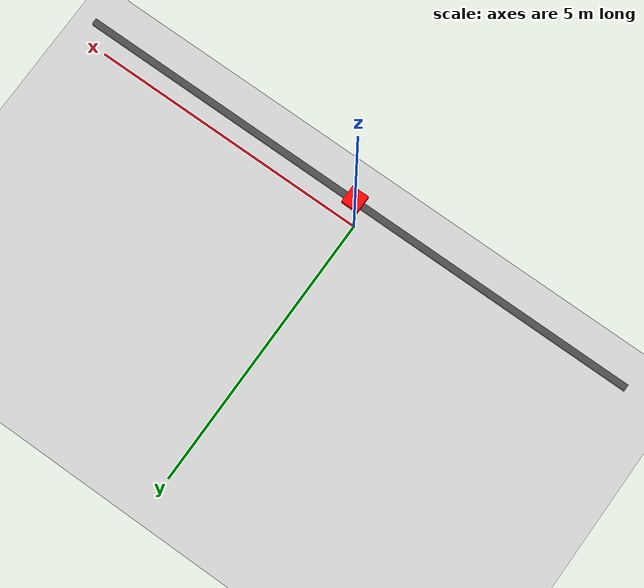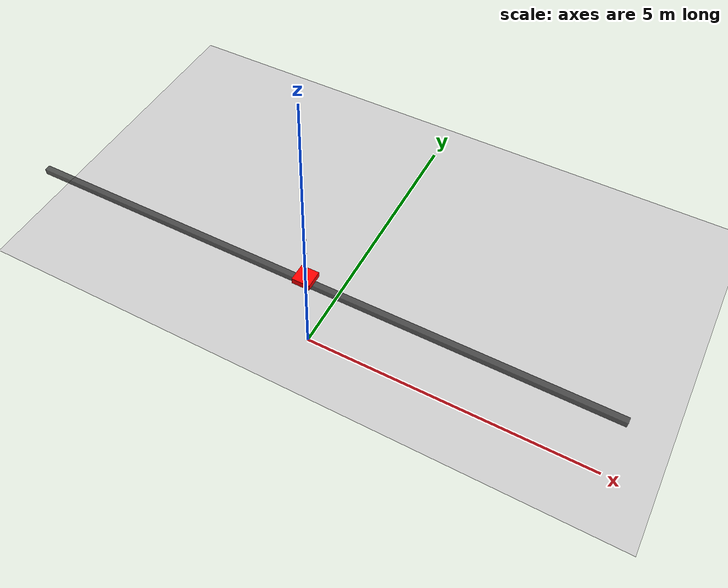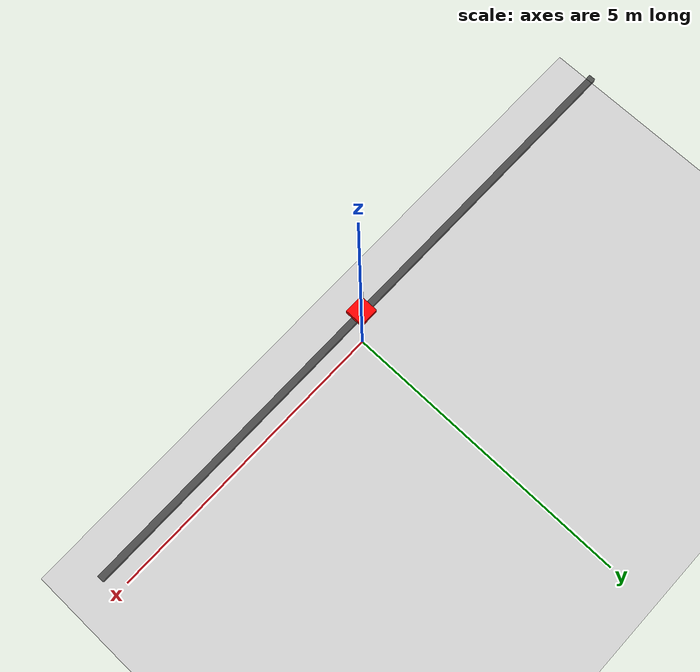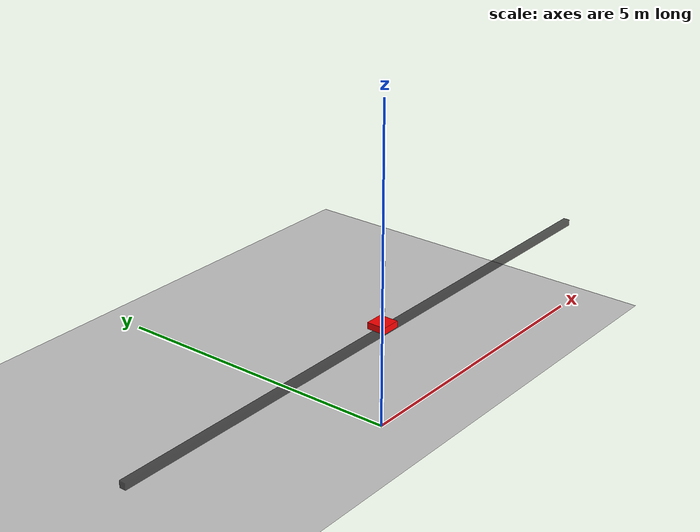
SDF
<?xml version="1.0" ?>
<sdf version="1.6">
  <world name="cartpole_world">
    <physics name="1ms" type="dart">
      <max_step_size>0.001</max_step_size>
      <real_time_factor>1.0</real_time_factor>
    </physics>
    <plugin
      filename="libignition-gazebo-physics-system.so"
      name="ignition::gazebo::systems::Physics">
    </plugin>
    <plugin
      filename="libignition-gazebo-user-commands-system.so"
      name="ignition::gazebo::systems::UserCommands">
    </plugin>
    <plugin
      filename="libignition-gazebo-scene-broadcaster-system.so"
      name="ignition::gazebo::systems::SceneBroadcaster">
    </plugin>

    <scene>
      <ambient>1.0 1.0 1.0</ambient>
      <background>0.8 0.8 0.8</background>
    </scene>

    <gui fullscreen="0">
      <!-- 3D scene -->
      <plugin filename="GzScene3D" name="3D View">
        <ignition-gui>
          <title>3D View</title>
          <property type="bool" key="showTitleBar">false</property>
          <property type="string" key="state">docked</property>
        </ignition-gui>

        <engine>ogre</engine>
        <scene>scene</scene>
        <ambient_light>0.4 0.4 0.4</ambient_light>
        <background_color>0.8 0.8 0.8</background_color>
        <camera_pose>0 -3 2.5 0 0.5 1.57</camera_pose>
      </plugin>

      <!-- World control -->
      <plugin filename="WorldControl" name="World control">
        <ignition-gui>
          <title>World control</title>
          <property type="bool" key="showTitleBar">false</property>
          <property type="bool" key="resizable">false</property>
          <property type="double" key="height">72</property>
          <property type="double" key="width">121</property>
          <property type="double" key="z">1</property>

          <property type="string" key="state">floating</property>
          <anchors target="3D View">
            <line own="left" target="left"/>
            <line own="bottom" target="bottom"/>
          </anchors>
        </ignition-gui>

        <play_pause>true</play_pause>
        <step>true</step>
        <start_paused>true</start_paused>
        <service>/world/cartpole_world/control</service>
        <stats_topic>/world/cartpole_world/stats</stats_topic>

      </plugin>

      <!-- World statistics -->
      <plugin filename="WorldStats" name="World stats">
        <ignition-gui>
          <title>World stats</title>
          <property type="bool" key="showTitleBar">false</property>
          <property type="bool" key="resizable">false</property>
          <property type="double" key="height">110</property>
          <property type="double" key="width">290</property>
          <property type="double" key="z">1</property>

          <property type="string" key="state">floating</property>
          <anchors target="3D View">
            <line own="right" target="right"/>
            <line own="bottom" target="bottom"/>
          </anchors>
        </ignition-gui>

        <sim_time>true</sim_time>
        <real_time>true</real_time>
        <real_time_factor>true</real_time_factor>
        <iterations>true</iterations>
        <topic>/world/cartpole_world/stats</topic>

      </plugin>

      <!-- Entity tree -->
      <plugin filename="EntityTree" name="Entity tree">
        <ignition-gui>
          <property type="bool" key="showTitleBar">false</property>
          <property type="string" key="state">docked</property>
        </ignition-gui>
      </plugin>

      <!-- Transform Control -->
      <plugin filename="TransformControl" name="Transform Control">
      </plugin>

    </gui>

    <light type="directional" name="sun">
      <cast_shadows>true</cast_shadows>
      <pose>0 0 10 0 0 0</pose>
      <diffuse>0.8 0.8 0.8 1</diffuse>
      <specular>0.2 0.2 0.2 1</specular>
      <attenuation>
        <range>1000</range>
        <constant>0.9</constant>
        <linear>0.01</linear>
        <quadratic>0.001</quadratic>
      </attenuation>
      <direction>-0.5 0.1 -0.9</direction>
    </light>

    <model name="ground_plane">
      <static>true</static>
      <link name="link">
        <collision name="collision">
          <geometry>
            <plane>
              <normal>0 0 1</normal>
            </plane>
          </geometry>
        </collision>
        <visual name="visual">
          <geometry>
            <plane>
              <normal>0 0 1</normal>
              <size>100 100</size>
            </plane>
          </geometry>
          <material>
            <ambient>0.8 0.8 0.8 1</ambient>
            <diffuse>0.8 0.8 0.8 1</diffuse>
            <specular>0.8 0.8 0.8 1</specular>
          </material>
        </visual>
      </link>
    </model>

    <include>
      <pose frame=''>0 0 1.5 0 0 0</pose>
      <name>cartpole</name>
      <uri>model://cartpole</uri>

      <plugin name="ecl::GazeboCartpole" filename="libgazebo_cartpole.so">
        <model_id>0</model_id>
        <model_name>cartpole</model_name>
        <link_name_cart>cart</link_name_cart>
        <link_name_pole>pole</link_name_pole>
        <states_topic>/model/cartpole/states</states_topic>
        <commands_topic>/model/cartpole/commands</commands_topic>
        <message_length>30</message_length>
      </plugin>
    </include>

  </world>
</sdf>

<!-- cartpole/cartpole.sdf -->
<sdf version='1.6'>
  <model name='cartpole'>

    <link name="rail">
      <pose frame=''>0 0 0.05 0 0 0</pose>
      <inertial>
        <pose frame=''>0 0 0 0 0 0</pose>
        <mass>100</mass>
        <inertia>
          <ixx>10</ixx>
          <iyy>10</iyy>
          <izz>10</izz>
          <ixy>0</ixy>
          <iyz>0</iyz>
          <ixz>0</ixz>
        </inertia>
      </inertial>
      <collision name="rail_collision">
        <geometry>
          <box>
            <size>10 0.1 0.1</size>
          </box>
        </geometry>
      </collision>
      <visual name="rail_visual">
        <cast_shadows>false</cast_shadows>
        <transparency>0.2</transparency>
        <geometry>
          <box>
            <size>10 0.1 0.1</size>
          </box>
        </geometry>
        <material>
          <ambient>0.2 0.2 0.2 1</ambient>
          <diffuse>0.2 0.2 0.2 1</diffuse>
          <specular>0.2 0.2 0.2 1</specular>
        </material>
      </visual>
      <self_collide>0</self_collide>
      <enable_wind>0</enable_wind>
      <kinematic>0</kinematic>
    </link>
    <joint name='rail_joint' type='fixed'>
      <pose frame=''>0 0 0.05 0 0 0</pose>
      <parent>world</parent>
      <child>rail</child>
    </joint>

    <link name='cart'>
      <pose frame=''>0 0 0.15 0 0 0</pose>
      <inertial>
        <pose frame=''>0 0 0 0 0 0</pose>
        <mass>1</mass>
        <inertia>
          <ixx>4.2e-03</ixx>
          <ixy>0</ixy>
          <ixz>0</ixz>
          <iyy>4.2e-03</iyy>
          <iyz>0</iyz>
          <izz>7.5e-03</izz>
        </inertia>
      </inertial>
      <collision name='cart_collision'>
        <pose frame=''>0 0 0 0 0 0</pose>
        <geometry>
          <box>
            <size>0.3 0.3 0.1</size>
          </box>
        </geometry>
      </collision>
      <visual name='cart_visual'>
        <cast_shadows>false</cast_shadows>
        <transparency>0</transparency>
        <pose frame=''>0 0 0 0 -0 0</pose>
        <geometry>
          <box>
            <size>0.3 0.3 0.1</size>
          </box>
        </geometry>
        <material>
          <ambient>1 0 0 1</ambient>
          <diffuse>1 0 0 1</diffuse>
          <specular>1 0 0 1</specular>
        </material>
      </visual>
    </link>
    <joint name='cart_joint' type='prismatic'>
      <pose frame=''>0 0 0.1 0 0 0</pose>
      <parent>rail</parent>
      <child>cart</child>
      <axis>
        <xyz>1 0 0</xyz>
        <limit>
          <lower>-4</lower>
          <upper>4</upper>
        </limit>
      </axis>
      <use_parent_model_frame>1</use_parent_model_frame>
    </joint>

    <link name='pole'>
      <pose frame=''>0 0 0.7 0 0 0</pose>
      <inertial>
        <pose frame=''>0 0 0 0 0 0</pose>
        <mass>0.5</mass>
        <inertia>
          <ixx>4.2e-02</ixx>
          <ixy>0</ixy>
          <ixz>0</ixz>
          <iyy>4.2e-02</iyy>
          <iyz>0</iyz>
          <izz>8.3e-05</izz>
        </inertia>
      </inertial>
      <collision name='pole_collision'>
        <pose frame=''>0 0 0 0 0 0</pose>
        <geometry>
          <box>
            <size>0.04 0.04 1</size>
          </box>
        </geometry>
      </collision>
      <visual name='pole_visual'>
        <cast_shadows>false</cast_shadows>
        <transparency>0</transparency>
        <pose frame=''>0 0 0 0 0 0</pose>
        <geometry>
          <box>
            <size>0.04 0.04 1</size>
          </box>
        </geometry>
        <material>
          <ambient>0.5 0.5 0.5 1</ambient>
          <diffuse>0.5 0.5 0.5 1</diffuse>
          <specular>0.5 0.5 0.5 1</specular>
        </material>
      </visual>
    </link>
    <joint name='pole_joint' type='revolute'>
      <pose frame=''>0 0 -0.5 0 0 0</pose>
      <parent>cart</parent>
      <child>pole</child>
      <axis>
        <xyz>0 1 0</xyz>
        <limit>
          <lower>-1e+16</lower>
          <upper>1e+16</upper>
        </limit>
        <dynamics>
          <spring_reference>0</spring_reference>
          <spring_stiffness>0</spring_stiffness>
        </dynamics>
        <use_parent_model_frame>1</use_parent_model_frame>
      </axis>
    </joint>

  </model>
</sdf>
